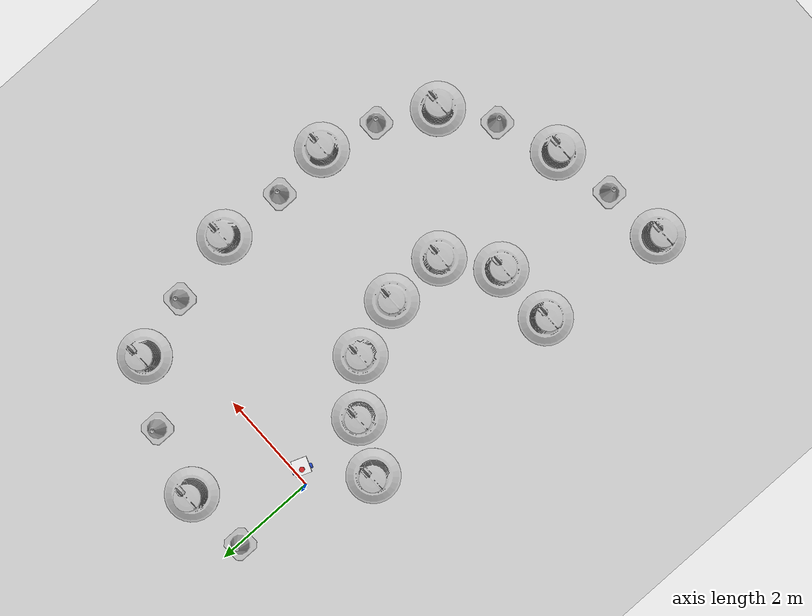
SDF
<sdf version="1.7">
 <world name="default">
  <light name="sun" type="directional">
   <pose>0 0 10 0 -0 0</pose>
   <diffuse>0.8 0.8 0.8 1</diffuse>
   <specular>0.2 0.2 0.2 1</specular>
   <attenuation>
    <range>1000</range>
    <constant>0.9</constant>
    <linear>0.01</linear>
    <quadratic>0.001</quadratic>
   </attenuation>
   <direction>-0.5 0.1 -0.9</direction>
   <spot><inner_angle>0</inner_angle><outer_angle>0</outer_angle><falloff>0</falloff></spot>
  </light>
  <model name="ground_plane">
   <static>1</static>
   <link name="link">
    <collision name="collision">
     <geometry><plane><normal>0 0 1</normal><size>100 100</size></plane></geometry>
     <surface>
      <contact><collide_bitmask>65535</collide_bitmask></contact>
      <friction><ode><mu>100</mu><mu2>50</mu2></ode></friction>
     </surface>
    </collision>
    <visual name="visual">
     <cast_shadows>0</cast_shadows>
     <geometry><plane><normal>0 0 1</normal><size>100 100</size></plane></geometry>
     <material>
      <script><uri>file://media/materials/scripts/gazebo.material</uri><name>Gazebo/Grey</name></script>
     </material>
    </visual>
   </link>
  </model>
  <gravity>0 0 -9.8</gravity>
  <magnetic_field>6e-06 2.3e-05 -4.2e-05</magnetic_field>
  <atmosphere type="adiabatic"/>
  <physics type="ode">
   <max_step_size>0.001</max_step_size>
   <real_time_factor>1</real_time_factor>
   <real_time_update_rate>1000</real_time_update_rate>
  </physics>
  <scene><ambient>0.4 0.4 0.4 1</ambient><background>0.7 0.7 0.7 1</background><shadows>1</shadows></scene>
  <spherical_coordinates>
   <surface_model>EARTH_WGS84</surface_model>
   <latitude_deg>0</latitude_deg>
   <longitude_deg>0</longitude_deg>
   <elevation>0</elevation>
   <heading_deg>0</heading_deg>
  </spherical_coordinates>
  <model name="bot_name">
   <link name="base_link">
    <inertial>
     <pose>0.055714 0 0.078571 0 -0 0</pose>
     <mass>0.7</mass>
     <inertia>
      <ixx>0.0064169</ixx>
      <ixy>0</ixy>
      <ixz>0.00118929</ixz>
      <iyy>0.00745405</iyy>
      <iyz>0</iyz>
      <izz>0.00876214</izz>
     </inertia>
    </inertial>
    <collision name="base_link_fixed_joint_lump__chassis_link_collision">
     <pose>0.05 0 0.075 0 -0 0</pose>
     <geometry><box><size>0.3 0.3 0.15</size></box></geometry>
    </collision>
    <collision name="base_link_fixed_joint_lump__caster_wheel_link_collision_1">
     <pose>0.14 0 0 0 -0 0</pose>
     <geometry><sphere><radius>0.05</radius></sphere></geometry>
     <surface><friction><ode><mu>0.001</mu><mu2>0.001</mu2></ode></friction></surface>
    </collision>
    <collision name="base_link_fixed_joint_lump__lidar_link_collision_2">
     <pose>0 0 0.175 0 -0 0</pose>
     <geometry><cylinder><length>0.04</length><radius>0.05</radius></cylinder></geometry>
    </collision>
    <visual name="base_link_fixed_joint_lump__chassis_link_visual">
     <pose>0.05 0 0.075 0 -0 0</pose>
     <geometry><box><size>0.3 0.3 0.15</size></box></geometry>
     <material>
      <script><name>Gazebo/White</name><uri>file://media/materials/scripts/gazebo.material</uri></script>
     </material>
    </visual>
    <visual name="base_link_fixed_joint_lump__caster_wheel_link_visual_1">
     <pose>0.14 0 0 0 -0 0</pose>
     <geometry><sphere><radius>0.05</radius></sphere></geometry>
     <material>
      <script><name>Gazebo/Black</name><uri>file://media/materials/scripts/gazebo.material</uri></script>
     </material>
    </visual>
    <visual name="base_link_fixed_joint_lump__lidar_link_visual_2">
     <pose>0 0 0.175 0 -0 0</pose>
     <geometry><cylinder><length>0.04</length><radius>0.05</radius></cylinder></geometry>
     <material>
      <script><name>Gazebo/Red</name><uri>file://media/materials/scripts/gazebo.material</uri></script>
     </material>
    </visual>
    <sensor name="lidar" type="ray">
     <visualize>1</visualize>
     <update_rate>10</update_rate>
     <ray>
      <scan>
       <horizontal>
        <samples>360</samples>
        <min_angle>-3.14</min_angle>
        <max_angle>3.14</max_angle>
        <resolution>1</resolution>
       </horizontal>
       <vertical><samples>1</samples><min_angle>0</min_angle><max_angle>0</max_angle></vertical>
      </scan>
      <range><min>0.3</min><max>12</max></range>
     </ray>
     <plugin name="Lidar_controller" filename="libgazebo_ros_ray_sensor.so">
      <ros><argument>~/out:=scan</argument></ros>
      <output_type>sensor_msgs/LaserScan</output_type>
      <frame_name>lidar_link</frame_name>
     </plugin>
     <pose>0 0 0.175 0 -0 0</pose>
    </sensor>
   </link>
   <joint name="left_wheel_joint" type="revolute">
    <pose relative_to="base_link">0 0.175 0 -1.5708 0 0</pose>
    <parent>base_link</parent>
    <child>left_wheel_link</child>
    <axis>
     <xyz>0 0 1</xyz>
     <limit><lower>-1e+16</lower><upper>1e+16</upper></limit>
     <dynamics><spring_reference>0</spring_reference><spring_stiffness>0</spring_stiffness></dynamics>
    </axis>
   </joint>
   <link name="left_wheel_link">
    <pose relative_to="left_wheel_joint">0 0 0 0 -0 0</pose>
    <inertial>
     <mass>0.1</mass>
     <inertia>
      <ixx>7.58333e-05</ixx>
      <ixy>0</ixy>
      <ixz>0</ixz>
      <iyy>7.58333e-05</iyy>
      <iyz>0</iyz>
      <izz>0.000125</izz>
     </inertia>
    </inertial>
    <collision name="left_wheel_link_collision">
     <geometry><cylinder><length>0.04</length><radius>0.05</radius></cylinder></geometry>
    </collision>
    <visual name="left_wheel_link_visual">
     <geometry><cylinder><length>0.04</length><radius>0.05</radius></cylinder></geometry>
     <material>
      <script><name>Gazebo/Blue</name><uri>file://media/materials/scripts/gazebo.material</uri></script>
     </material>
    </visual>
   </link>
   <joint name="right_wheel_joint" type="revolute">
    <pose relative_to="base_link">0 -0.175 0 1.5708 -0 0</pose>
    <parent>base_link</parent>
    <child>right_wheel_link</child>
    <axis>
     <xyz>0 0 -1</xyz>
     <limit><lower>-1e+16</lower><upper>1e+16</upper></limit>
     <dynamics><spring_reference>0</spring_reference><spring_stiffness>0</spring_stiffness></dynamics>
    </axis>
   </joint>
   <link name="right_wheel_link">
    <pose relative_to="right_wheel_joint">0 0 0 0 -0 0</pose>
    <inertial>
     <mass>0.1</mass>
     <inertia>
      <ixx>7.58333e-05</ixx>
      <ixy>0</ixy>
      <ixz>0</ixz>
      <iyy>7.58333e-05</iyy>
      <iyz>0</iyz>
      <izz>0.000125</izz>
     </inertia>
    </inertial>
    <collision name="right_wheel_link_collision">
     <geometry><cylinder><length>0.04</length><radius>0.05</radius></cylinder></geometry>
    </collision>
    <visual name="right_wheel_link_visual">
     <geometry><cylinder><length>0.04</length><radius>0.05</radius></cylinder></geometry>
     <material>
      <script><name>Gazebo/Blue</name><uri>file://media/materials/scripts/gazebo.material</uri></script>
     </material>
    </visual>
   </link>
   <static>0</static>
   <plugin name="driff_drive" filename="libgazebo_ros_diff_drive.so">
    <left_joint>left_wheel_joint</left_joint>
    <right_joint>right_wheel_joint</right_joint>
    <wheel_separation>0.35</wheel_separation>
    <wheel_diameter>0.1</wheel_diameter>
    <max_wheel_torque>200</max_wheel_torque>
    <max_wheel_acceleration>10.0</max_wheel_acceleration>
    <odometry_frame>odom</odometry_frame>
    <robot_base_frame>base_link</robot_base_frame>
    <publish_odom>1</publish_odom>
    <publish_odom_tf>1</publish_odom_tf>
    <publish_wheel_tf>1</publish_wheel_tf>
   </plugin>
   <pose>0.258421 -0.14154 0.049995 2.7e-05 -3e-06 -0.363786</pose>
  </model>
  <model name="Construction Cone">
   <link name="link">
    <collision name="collision">
     <geometry>
      <mesh><scale>10 10 10</scale><uri>model://construction_cone/meshes/construction_cone.dae</uri></mesh>
     </geometry>
    </collision>
    <visual name="visual">
     <geometry>
      <mesh><scale>10 10 10</scale><uri>model://construction_cone/meshes/construction_cone.dae</uri></mesh>
     </geometry>
    </visual>
    <inertial>
     <inertia><ixx>1</ixx><ixy>0</ixy><ixz>0</ixz><iyy>1</iyy><iyz>0</iyz><izz>1</izz></inertia>
     <mass>1</mass>
    </inertial>
   </link>
   <pose>-0.013558 1.61441 -5e-06 -4e-06 1e-06 0</pose>
  </model>
  <model name="Construction Barrel">
   <link name="link">
    <inertial>
     <pose>0 0 0.4 0 -0 0</pose>
     <mass>500</mass>
     <inertia><ixx>51.2096</ixx><iyy>51.2096</iyy><izz>25</izz><ixy>0</ixy><ixz>0</ixz><iyz>0</iyz></inertia>
    </inertial>
    <collision name="collision">
     <geometry><mesh><uri>model://construction_barrel/meshes/construction_barrel.dae</uri></mesh></geometry>
    </collision>
    <visual name="visual">
     <geometry><mesh><uri>model://construction_barrel/meshes/construction_barrel.dae</uri></mesh></geometry>
    </visual>
   </link>
   <pose>1.25452 1.67317 1e-06 3e-06 2e-06 -5.4e-05</pose>
  </model>
  <model name="Construction Cone_0">
   <link name="link">
    <collision name="collision">
     <geometry>
      <mesh><scale>10 10 10</scale><uri>model://construction_cone/meshes/construction_cone.dae</uri></mesh>
     </geometry>
    </collision>
    <visual name="visual">
     <geometry>
      <mesh><scale>10 10 10</scale><uri>model://construction_cone/meshes/construction_cone.dae</uri></mesh>
     </geometry>
    </visual>
    <inertial>
     <inertia><ixx>1</ixx><ixy>0</ixy><ixz>0</ixz><iyy>1</iyy><iyz>0</iyz><izz>1</izz></inertia>
     <mass>1</mass>
    </inertial>
   </link>
   <pose>2.56815 1.34116 -6e-06 -4e-06 0 0</pose>
  </model>
  <model name="Construction Barrel_0">
   <link name="link">
    <inertial>
     <pose>0 0 0.4 0 -0 0</pose>
     <mass>500</mass>
     <inertia><ixx>51.2096</ixx><iyy>51.2096</iyy><izz>25</izz><ixy>0</ixy><ixz>0</ixz><iyz>0</iyz></inertia>
    </inertial>
    <collision name="collision">
     <geometry><mesh><uri>model://construction_barrel/meshes/construction_barrel.dae</uri></mesh></geometry>
    </collision>
    <visual name="visual">
     <geometry><mesh><uri>model://construction_barrel/meshes/construction_barrel.dae</uri></mesh></geometry>
    </visual>
   </link>
   <pose>3.70899 0.638266 -2e-06 1e-06 8e-06 -2.8e-05</pose>
  </model>
  <model name="Construction Cone_1">
   <link name="link">
    <collision name="collision">
     <geometry>
      <mesh><scale>10 10 10</scale><uri>model://construction_cone/meshes/construction_cone.dae</uri></mesh>
     </geometry>
    </collision>
    <visual name="visual">
     <geometry>
      <mesh><scale>10 10 10</scale><uri>model://construction_cone/meshes/construction_cone.dae</uri></mesh>
     </geometry>
    </visual>
    <inertial>
     <inertia><ixx>1</ixx><ixy>0</ixy><ixz>0</ixz><iyy>1</iyy><iyz>0</iyz><izz>1</izz></inertia>
     <mass>1</mass>
    </inertial>
   </link>
   <pose>4.06065 -0.538185 -0 0 -1e-06 0</pose>
  </model>
  <model name="Construction Barrel_1">
   <link name="link">
    <inertial>
     <pose>0 0 0.4 0 -0 0</pose>
     <mass>500</mass>
     <inertia><ixx>51.2096</ixx><iyy>51.2096</iyy><izz>25</izz><ixy>0</ixy><ixz>0</ixz><iyz>0</iyz></inertia>
    </inertial>
    <collision name="collision">
     <geometry><mesh><uri>model://construction_barrel/meshes/construction_barrel.dae</uri></mesh></geometry>
    </collision>
    <visual name="visual">
     <geometry><mesh><uri>model://construction_barrel/meshes/construction_barrel.dae</uri></mesh></geometry>
    </visual>
   </link>
   <pose>4.36864 -1.89433 -0 0 -0 -4.1e-05</pose>
  </model>
  <model name="Construction Cone_2">
   <link name="link">
    <collision name="collision">
     <geometry>
      <mesh><scale>10 10 10</scale><uri>model://construction_cone/meshes/construction_cone.dae</uri></mesh>
     </geometry>
    </collision>
    <visual name="visual">
     <geometry>
      <mesh><scale>10 10 10</scale><uri>model://construction_cone/meshes/construction_cone.dae</uri></mesh>
     </geometry>
    </visual>
    <inertial>
     <inertia><ixx>1</ixx><ixy>0</ixy><ixz>0</ixz><iyy>1</iyy><iyz>0</iyz><izz>1</izz></inertia>
     <mass>1</mass>
    </inertial>
   </link>
   <pose>4.27635 -3.16968 -0 0 -0 0</pose>
  </model>
  <model name="Construction Barrel_2">
   <link name="link">
    <inertial>
     <pose>0 0 0.4 0 -0 0</pose>
     <mass>500</mass>
     <inertia><ixx>51.2096</ixx><iyy>51.2096</iyy><izz>25</izz><ixy>0</ixy><ixz>0</ixz><iyz>0</iyz></inertia>
    </inertial>
    <collision name="collision">
     <geometry><mesh><uri>model://construction_barrel/meshes/construction_barrel.dae</uri></mesh></geometry>
    </collision>
    <visual name="visual">
     <geometry><mesh><uri>model://construction_barrel/meshes/construction_barrel.dae</uri></mesh></geometry>
    </visual>
   </link>
   <pose>-0.696602 -1.02422 1e-06 3e-06 2e-06 -2.3e-05</pose>
  </model>
  <model name="Construction Barrel_3">
   <link name="link">
    <inertial>
     <pose>0 0 0.4 0 -0 0</pose>
     <mass>500</mass>
     <inertia><ixx>51.2096</ixx><iyy>51.2096</iyy><izz>25</izz><ixy>0</ixy><ixz>0</ixz><iyz>0</iyz></inertia>
    </inertial>
    <collision name="collision">
     <geometry><mesh><uri>model://construction_barrel/meshes/construction_barrel.dae</uri></mesh></geometry>
    </collision>
    <visual name="visual">
     <geometry><mesh><uri>model://construction_barrel/meshes/construction_barrel.dae</uri></mesh></geometry>
    </visual>
   </link>
   <pose>0.268676 -1.53517 1e-06 3e-06 2e-06 -2.2e-05</pose>
  </model>
  <model name="Construction Barrel_4">
   <link name="link">
    <inertial>
     <pose>0 0 0.4 0 -0 0</pose>
     <mass>500</mass>
     <inertia><ixx>51.2096</ixx><iyy>51.2096</iyy><izz>25</izz><ixy>0</ixy><ixz>0</ixz><iyz>0</iyz></inertia>
    </inertial>
    <collision name="collision">
     <geometry><mesh><uri>model://construction_barrel/meshes/construction_barrel.dae</uri></mesh></geometry>
    </collision>
    <visual name="visual">
     <geometry><mesh><uri>model://construction_barrel/meshes/construction_barrel.dae</uri></mesh></geometry>
    </visual>
   </link>
   <pose>1.09611 -2.30674 1e-06 3e-06 2e-06 -2.1e-05</pose>
  </model>
  <model name="Construction Barrel_5">
   <link name="link">
    <inertial>
     <pose>0 0 0.4 0 -0 0</pose>
     <mass>500</mass>
     <inertia><ixx>51.2096</ixx><iyy>51.2096</iyy><izz>25</izz><ixy>0</ixy><ixz>0</ixz><iyz>0</iyz></inertia>
    </inertial>
    <collision name="collision">
     <geometry><mesh><uri>model://construction_barrel/meshes/construction_barrel.dae</uri></mesh></geometry>
    </collision>
    <visual name="visual">
     <geometry><mesh><uri>model://construction_barrel/meshes/construction_barrel.dae</uri></mesh></geometry>
    </visual>
   </link>
   <pose>1.46512 -3.40334 1e-06 3e-06 2e-06 -2e-05</pose>
  </model>
  <model name="Construction Barrel_6">
   <link name="link">
    <inertial>
     <pose>0 0 0.4 0 -0 0</pose>
     <mass>500</mass>
     <inertia><ixx>51.2096</ixx><iyy>51.2096</iyy><izz>25</izz><ixy>0</ixy><ixz>0</ixz><iyz>0</iyz></inertia>
    </inertial>
    <collision name="collision">
     <geometry><mesh><uri>model://construction_barrel/meshes/construction_barrel.dae</uri></mesh></geometry>
    </collision>
    <visual name="visual">
     <geometry><mesh><uri>model://construction_barrel/meshes/construction_barrel.dae</uri></mesh></geometry>
    </visual>
   </link>
   <pose>1.46828 -4.56334 -0 0 0 -1.8e-05</pose>
  </model>
  <model name="Construction Barrel_7">
   <link name="link">
    <inertial>
     <pose>0 0 0.4 0 -0 0</pose>
     <mass>500</mass>
     <inertia><ixx>51.2096</ixx><iyy>51.2096</iyy><izz>25</izz><ixy>0</ixy><ixz>0</ixz><iyz>0</iyz></inertia>
    </inertial>
    <collision name="collision">
     <geometry><mesh><uri>model://construction_barrel/meshes/construction_barrel.dae</uri></mesh></geometry>
    </collision>
    <visual name="visual">
     <geometry><mesh><uri>model://construction_barrel/meshes/construction_barrel.dae</uri></mesh></geometry>
    </visual>
   </link>
   <pose>4.37343 -4.28249 -2e-06 8e-06 -4e-06 -1.7e-05</pose>
  </model>
  <model name="Construction Barrel_8">
   <link name="link">
    <inertial>
     <pose>0 0 0.4 0 -0 0</pose>
     <mass>500</mass>
     <inertia><ixx>51.2096</ixx><iyy>51.2096</iyy><izz>25</izz><ixy>0</ixy><ixz>0</ixz><iyz>0</iyz></inertia>
    </inertial>
    <collision name="collision">
     <geometry><mesh><uri>model://construction_barrel/meshes/construction_barrel.dae</uri></mesh></geometry>
    </collision>
    <visual name="visual">
     <geometry><mesh><uri>model://construction_barrel/meshes/construction_barrel.dae</uri></mesh></geometry>
    </visual>
   </link>
   <pose>0.565413 -5.27334 0 0 0 -1.5e-05</pose>
  </model>
  <model name="Construction Barrel_9">
   <link name="link">
    <inertial>
     <pose>0 0 0.4 0 -0 0</pose>
     <mass>500</mass>
     <inertia><ixx>51.2096</ixx><iyy>51.2096</iyy><izz>25</izz><ixy>0</ixy><ixz>0</ixz><iyz>0</iyz></inertia>
    </inertial>
    <collision name="collision">
     <geometry><mesh><uri>model://construction_barrel/meshes/construction_barrel.dae</uri></mesh></geometry>
    </collision>
    <visual name="visual">
     <geometry><mesh><uri>model://construction_barrel/meshes/construction_barrel.dae</uri></mesh></geometry>
    </visual>
   </link>
   <pose>-0.641097 -5.28817 -0 1e-06 -1e-06 -1.2e-05</pose>
  </model>
  <model name="Construction Cone_3">
   <link name="link">
    <collision name="collision">
     <geometry>
      <mesh><scale>10 10 10</scale><uri>model://construction_cone/meshes/construction_cone.dae</uri></mesh>
     </geometry>
    </collision>
    <visual name="visual">
     <geometry>
      <mesh><scale>10 10 10</scale><uri>model://construction_cone/meshes/construction_cone.dae</uri></mesh>
     </geometry>
    </visual>
    <inertial>
     <inertia><ixx>1</ixx><ixy>0</ixy><ixz>0</ixz><iyy>1</iyy><iyz>0</iyz><izz>1</izz></inertia>
     <mass>1</mass>
    </inertial>
   </link>
   <pose>4.07547 -5.34951 -6e-06 2e-06 -0 0</pose>
  </model>
  <model name="Construction Barrel_10">
   <link name="link">
    <inertial>
     <pose>0 0 0.4 0 -0 0</pose>
     <mass>500</mass>
     <inertia><ixx>51.2096</ixx><iyy>51.2096</iyy><izz>25</izz><ixy>0</ixy><ixz>0</ixz><iyz>0</iyz></inertia>
    </inertial>
    <collision name="collision">
     <geometry><mesh><uri>model://construction_barrel/meshes/construction_barrel.dae</uri></mesh></geometry>
    </collision>
    <visual name="visual">
     <geometry><mesh><uri>model://construction_barrel/meshes/construction_barrel.dae</uri></mesh></geometry>
    </visual>
   </link>
   <pose>3.52294 -6.361 -2e-06 -0 7e-06 -8e-06</pose>
  </model>
  <model name="Construction Cone_4">
   <link name="link">
    <collision name="collision">
     <geometry>
      <mesh><scale>10 10 10</scale><uri>model://construction_cone/meshes/construction_cone.dae</uri></mesh>
     </geometry>
    </collision>
    <visual name="visual">
     <geometry>
      <mesh><scale>10 10 10</scale><uri>model://construction_cone/meshes/construction_cone.dae</uri></mesh>
     </geometry>
    </visual>
    <inertial>
     <inertia><ixx>1</ixx><ixy>0</ixy><ixz>0</ixz><iyy>1</iyy><iyz>0</iyz><izz>1</izz></inertia>
     <mass>1</mass>
    </inertial>
   </link>
   <pose>2.61302 -7.00074 -0 0 -1e-06 0</pose>
  </model>
  <model name="Construction Barrel_11">
   <link name="link">
    <inertial>
     <pose>0 0 0.4 0 -0 0</pose>
     <mass>500</mass>
     <inertia><ixx>51.2096</ixx><iyy>51.2096</iyy><izz>25</izz><ixy>0</ixy><ixz>0</ixz><iyz>0</iyz></inertia>
    </inertial>
    <collision name="collision">
     <geometry><mesh><uri>model://construction_barrel/meshes/construction_barrel.dae</uri></mesh></geometry>
    </collision>
    <visual name="visual">
     <geometry><mesh><uri>model://construction_barrel/meshes/construction_barrel.dae</uri></mesh></geometry>
    </visual>
   </link>
   <pose>1.47119 -7.46544 1e-06 2e-06 3e-06 -6e-06</pose>
  </model>
  <model name="Construction Cone_5">
   <link name="link">
    <collision name="collision">
     <geometry>
      <mesh><scale>10 10 10</scale><uri>model://construction_cone/meshes/construction_cone.dae</uri></mesh>
     </geometry>
    </collision>
    <visual name="visual">
     <geometry>
      <mesh><scale>10 10 10</scale><uri>model://construction_cone/meshes/construction_cone.dae</uri></mesh>
     </geometry>
    </visual>
    <inertial>
     <inertia><ixx>1</ixx><ixy>0</ixy><ixz>0</ixz><iyy>1</iyy><iyz>0</iyz><izz>1</izz></inertia>
     <mass>1</mass>
    </inertial>
   </link>
   <pose>0.301436 -7.67919 -0 0 -0 0</pose>
  </model>
  <model name="Construction Barrel_12">
   <link name="link">
    <inertial>
     <pose>0 0 0.4 0 -0 0</pose>
     <mass>500</mass>
     <inertia><ixx>51.2096</ixx><iyy>51.2096</iyy><izz>25</izz><ixy>0</ixy><ixz>0</ixz><iyz>0</iyz></inertia>
    </inertial>
    <collision name="collision">
     <geometry><mesh><uri>model://construction_barrel/meshes/construction_barrel.dae</uri></mesh></geometry>
    </collision>
    <visual name="visual">
     <geometry><mesh><uri>model://construction_barrel/meshes/construction_barrel.dae</uri></mesh></geometry>
    </visual>
   </link>
   <pose>-0.884078 -7.81142 -1e-06 3e-06 -2e-06 -2e-06</pose>
  </model>
 </world>
</sdf>
